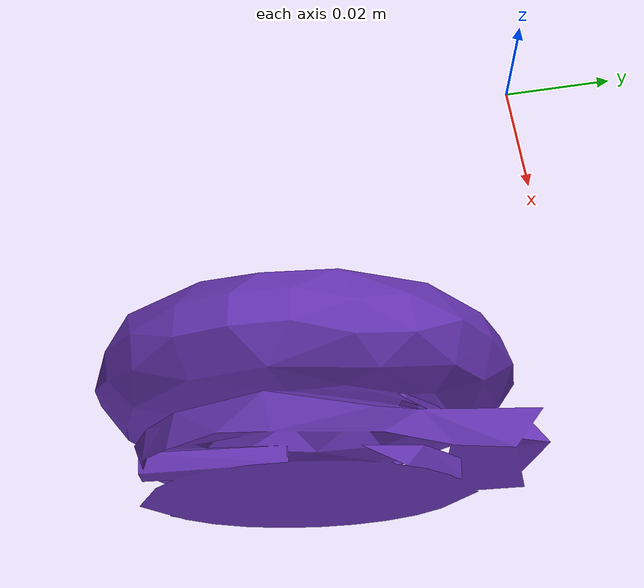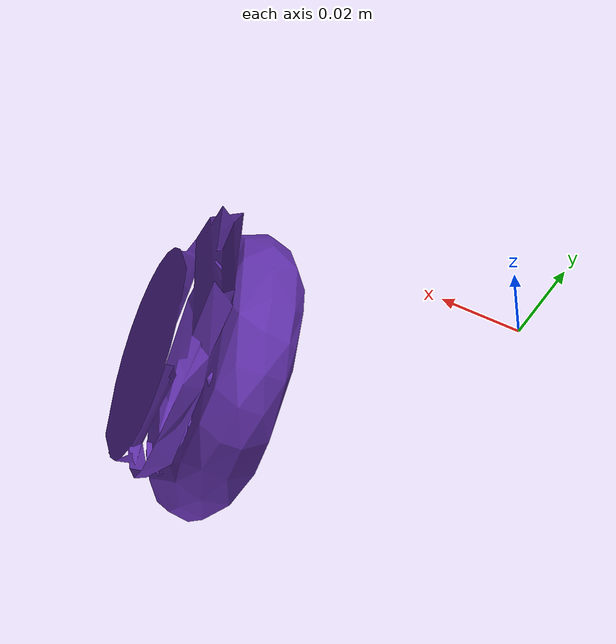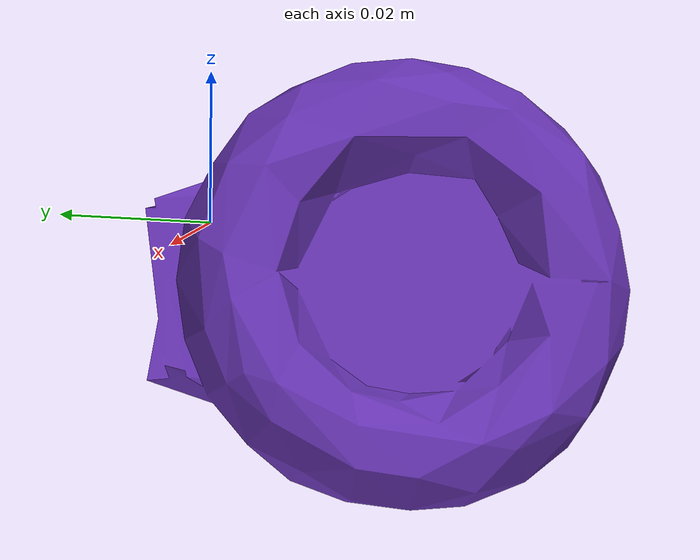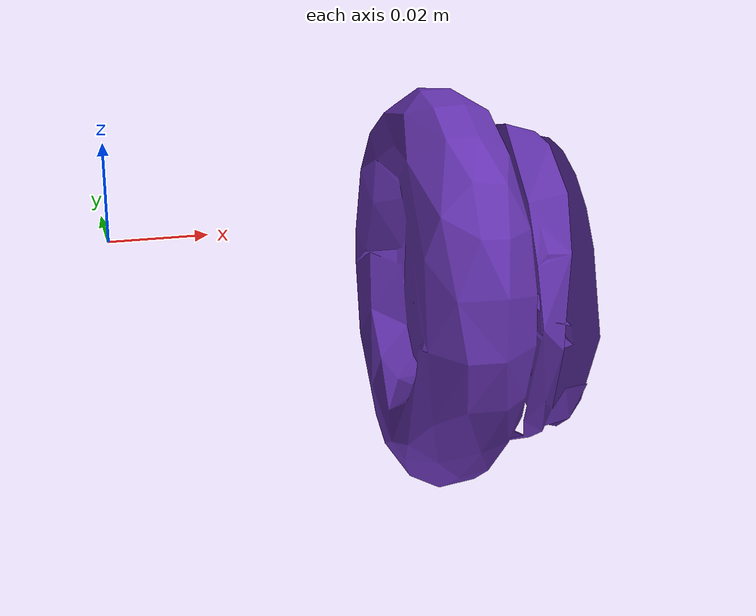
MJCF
<mujoco model="top_watertight_tiny">
  <default>
    <default group="2" type="mesh" contype="0" conaffinity="0">
      <geom group="2" type="mesh" contype="0" conaffinity="0"/>
    </default>
    <default group="3" type="mesh">
      <geom group="3" type="mesh"/>
    </default>
  </default>
  <asset>
    <mesh file="top_watertight_tiny.obj"/>
    <mesh file="top_watertight_tiny_collision_0.obj"/>
    <mesh file="top_watertight_tiny_collision_1.obj"/>
    <mesh file="top_watertight_tiny_collision_2.obj"/>
    <mesh file="top_watertight_tiny_collision_3.obj"/>
    <mesh file="top_watertight_tiny_collision_4.obj"/>
    <mesh file="top_watertight_tiny_collision_5.obj"/>
    <mesh file="top_watertight_tiny_collision_6.obj"/>
    <mesh file="top_watertight_tiny_collision_7.obj"/>
    <mesh file="top_watertight_tiny_collision_8.obj"/>
    <mesh file="top_watertight_tiny_collision_9.obj"/>
    <mesh file="top_watertight_tiny_collision_10.obj"/>
    <mesh file="top_watertight_tiny_collision_11.obj"/>
    <mesh file="top_watertight_tiny_collision_12.obj"/>
    <mesh file="top_watertight_tiny_collision_13.obj"/>
    <mesh file="top_watertight_tiny_collision_14.obj"/>
    <mesh file="top_watertight_tiny_collision_15.obj"/>
    <mesh file="top_watertight_tiny_collision_16.obj"/>
    <mesh file="top_watertight_tiny_collision_17.obj"/>
    <mesh file="top_watertight_tiny_collision_18.obj"/>
    <mesh file="top_watertight_tiny_collision_19.obj"/>
    <mesh file="top_watertight_tiny_collision_20.obj"/>
    <mesh file="top_watertight_tiny_collision_21.obj"/>
    <mesh file="top_watertight_tiny_collision_22.obj"/>
    <mesh file="top_watertight_tiny_collision_23.obj"/>
    <mesh file="top_watertight_tiny_collision_24.obj"/>
    <mesh file="top_watertight_tiny_collision_25.obj"/>
    <mesh file="top_watertight_tiny_collision_26.obj"/>
    <mesh file="top_watertight_tiny_collision_27.obj"/>
    <mesh file="top_watertight_tiny_collision_28.obj"/>
    <mesh file="top_watertight_tiny_collision_29.obj"/>
    <mesh file="top_watertight_tiny_collision_30.obj"/>
    <mesh file="top_watertight_tiny_collision_31.obj"/>
    <mesh file="top_watertight_tiny_collision_32.obj"/>
    <mesh file="top_watertight_tiny_collision_33.obj"/>
    <mesh file="top_watertight_tiny_collision_34.obj"/>
    <mesh file="top_watertight_tiny_collision_35.obj"/>
    <mesh file="top_watertight_tiny_collision_36.obj"/>
    <mesh file="top_watertight_tiny_collision_37.obj"/>
    <mesh file="top_watertight_tiny_collision_38.obj"/>
    <mesh file="top_watertight_tiny_collision_39.obj"/>
    <mesh file="top_watertight_tiny_collision_40.obj"/>
    <mesh file="top_watertight_tiny_collision_41.obj"/>
    <mesh file="top_watertight_tiny_collision_42.obj"/>
    <mesh file="top_watertight_tiny_collision_43.obj"/>
    <mesh file="top_watertight_tiny_collision_44.obj"/>
    <mesh file="top_watertight_tiny_collision_45.obj"/>
    <mesh file="top_watertight_tiny_collision_46.obj"/>
    <mesh file="top_watertight_tiny_collision_47.obj"/>
    <mesh file="top_watertight_tiny_collision_48.obj"/>
    <mesh file="top_watertight_tiny_collision_49.obj"/>
    <mesh file="top_watertight_tiny_collision_50.obj"/>
    <mesh file="top_watertight_tiny_collision_51.obj"/>
    <mesh file="top_watertight_tiny_collision_52.obj"/>
    <mesh file="top_watertight_tiny_collision_53.obj"/>
    <mesh file="top_watertight_tiny_collision_54.obj"/>
    <mesh file="top_watertight_tiny_collision_55.obj"/>
    <mesh file="top_watertight_tiny_collision_56.obj"/>
    <mesh file="top_watertight_tiny_collision_57.obj"/>
    <mesh file="top_watertight_tiny_collision_58.obj"/>
    <mesh file="top_watertight_tiny_collision_59.obj"/>
    <mesh file="top_watertight_tiny_collision_60.obj"/>
    <mesh file="top_watertight_tiny_collision_61.obj"/>
    <mesh file="top_watertight_tiny_collision_62.obj"/>
    <mesh file="top_watertight_tiny_collision_63.obj"/>
    <mesh file="top_watertight_tiny_collision_64.obj"/>
    <mesh file="top_watertight_tiny_collision_65.obj"/>
    <mesh file="top_watertight_tiny_collision_66.obj"/>
    <mesh file="top_watertight_tiny_collision_67.obj"/>
    <mesh file="top_watertight_tiny_collision_68.obj"/>
    <mesh file="top_watertight_tiny_collision_69.obj"/>
    <mesh file="top_watertight_tiny_collision_70.obj"/>
    <mesh file="top_watertight_tiny_collision_71.obj"/>
    <mesh file="top_watertight_tiny_collision_72.obj"/>
    <mesh file="top_watertight_tiny_collision_73.obj"/>
    <mesh file="top_watertight_tiny_collision_74.obj"/>
    <mesh file="top_watertight_tiny_collision_75.obj"/>
    <mesh file="top_watertight_tiny_collision_76.obj"/>
    <mesh file="top_watertight_tiny_collision_77.obj"/>
    <mesh file="top_watertight_tiny_collision_78.obj"/>
    <mesh file="top_watertight_tiny_collision_79.obj"/>
    <mesh file="top_watertight_tiny_collision_80.obj"/>
    <mesh file="top_watertight_tiny_collision_81.obj"/>
    <mesh file="top_watertight_tiny_collision_82.obj"/>
    <mesh file="top_watertight_tiny_collision_83.obj"/>
    <mesh file="top_watertight_tiny_collision_84.obj"/>
    <mesh file="top_watertight_tiny_collision_85.obj"/>
    <mesh file="top_watertight_tiny_collision_86.obj"/>
    <mesh file="top_watertight_tiny_collision_87.obj"/>
    <mesh file="top_watertight_tiny_collision_88.obj"/>
    <mesh file="top_watertight_tiny_collision_89.obj"/>
    <mesh file="top_watertight_tiny_collision_90.obj"/>
    <mesh file="top_watertight_tiny_collision_91.obj"/>
    <mesh file="top_watertight_tiny_collision_92.obj"/>
    <mesh file="top_watertight_tiny_collision_93.obj"/>
    <mesh file="top_watertight_tiny_collision_94.obj"/>
    <mesh file="top_watertight_tiny_collision_95.obj"/>
    <mesh file="top_watertight_tiny_collision_96.obj"/>
    <mesh file="top_watertight_tiny_collision_97.obj"/>
    <mesh file="top_watertight_tiny_collision_98.obj"/>
    <mesh file="top_watertight_tiny_collision_99.obj"/>
    <mesh file="top_watertight_tiny_collision_100.obj"/>
    <mesh file="top_watertight_tiny_collision_101.obj"/>
    <mesh file="top_watertight_tiny_collision_102.obj"/>
    <mesh file="top_watertight_tiny_collision_103.obj"/>
    <mesh file="top_watertight_tiny_collision_104.obj"/>
    <mesh file="top_watertight_tiny_collision_105.obj"/>
    <mesh file="top_watertight_tiny_collision_106.obj"/>
    <mesh file="top_watertight_tiny_collision_107.obj"/>
    <mesh file="top_watertight_tiny_collision_108.obj"/>
    <mesh file="top_watertight_tiny_collision_109.obj"/>
    <mesh file="top_watertight_tiny_collision_110.obj"/>
    <mesh file="top_watertight_tiny_collision_111.obj"/>
    <mesh file="top_watertight_tiny_collision_112.obj"/>
    <mesh file="top_watertight_tiny_collision_113.obj"/>
    <mesh file="top_watertight_tiny_collision_114.obj"/>
    <mesh file="top_watertight_tiny_collision_115.obj"/>
    <mesh file="top_watertight_tiny_collision_116.obj"/>
    <mesh file="top_watertight_tiny_collision_117.obj"/>
    <mesh file="top_watertight_tiny_collision_118.obj"/>
    <mesh file="top_watertight_tiny_collision_119.obj"/>
    <mesh file="top_watertight_tiny_collision_120.obj"/>
    <mesh file="top_watertight_tiny_collision_121.obj"/>
    <mesh file="top_watertight_tiny_collision_122.obj"/>
    <mesh file="top_watertight_tiny_collision_123.obj"/>
    <mesh file="top_watertight_tiny_collision_124.obj"/>
    <mesh file="top_watertight_tiny_collision_125.obj"/>
    <mesh file="top_watertight_tiny_collision_126.obj"/>
    <mesh file="top_watertight_tiny_collision_127.obj"/>
    <mesh file="top_watertight_tiny_collision_128.obj"/>
    <mesh file="top_watertight_tiny_collision_129.obj"/>
    <mesh file="top_watertight_tiny_collision_130.obj"/>
    <mesh file="top_watertight_tiny_collision_131.obj"/>
    <mesh file="top_watertight_tiny_collision_132.obj"/>
    <mesh file="top_watertight_tiny_collision_133.obj"/>
    <mesh file="top_watertight_tiny_collision_134.obj"/>
    <mesh file="top_watertight_tiny_collision_135.obj"/>
    <mesh file="top_watertight_tiny_collision_136.obj"/>
    <mesh file="top_watertight_tiny_collision_137.obj"/>
    <mesh file="top_watertight_tiny_collision_138.obj"/>
    <mesh file="top_watertight_tiny_collision_139.obj"/>
    <mesh file="top_watertight_tiny_collision_140.obj"/>
    <mesh file="top_watertight_tiny_collision_141.obj"/>
    <mesh file="top_watertight_tiny_collision_142.obj"/>
    <mesh file="top_watertight_tiny_collision_143.obj"/>
    <mesh file="top_watertight_tiny_collision_144.obj"/>
    <mesh file="top_watertight_tiny_collision_145.obj"/>
    <mesh file="top_watertight_tiny_collision_146.obj"/>
    <mesh file="top_watertight_tiny_collision_147.obj"/>
    <mesh file="top_watertight_tiny_collision_148.obj"/>
    <mesh file="top_watertight_tiny_collision_149.obj"/>
    <mesh file="top_watertight_tiny_collision_150.obj"/>
    <mesh file="top_watertight_tiny_collision_151.obj"/>
    <mesh file="top_watertight_tiny_collision_152.obj"/>
    <mesh file="top_watertight_tiny_collision_153.obj"/>
    <mesh file="top_watertight_tiny_collision_154.obj"/>
    <mesh file="top_watertight_tiny_collision_155.obj"/>
    <mesh file="top_watertight_tiny_collision_156.obj"/>
    <mesh file="top_watertight_tiny_collision_157.obj"/>
    <mesh file="top_watertight_tiny_collision_158.obj"/>
    <mesh file="top_watertight_tiny_collision_159.obj"/>
    <mesh file="top_watertight_tiny_collision_160.obj"/>
    <mesh file="top_watertight_tiny_collision_161.obj"/>
    <mesh file="top_watertight_tiny_collision_162.obj"/>
    <mesh file="top_watertight_tiny_collision_163.obj"/>
    <mesh file="top_watertight_tiny_collision_164.obj"/>
    <mesh file="top_watertight_tiny_collision_165.obj"/>
    <mesh file="top_watertight_tiny_collision_166.obj"/>
    <mesh file="top_watertight_tiny_collision_167.obj"/>
    <mesh file="top_watertight_tiny_collision_168.obj"/>
    <mesh file="top_watertight_tiny_collision_169.obj"/>
    <mesh file="top_watertight_tiny_collision_170.obj"/>
    <mesh file="top_watertight_tiny_collision_171.obj"/>
    <mesh file="top_watertight_tiny_collision_172.obj"/>
    <mesh file="top_watertight_tiny_collision_173.obj"/>
    <mesh file="top_watertight_tiny_collision_174.obj"/>
    <mesh file="top_watertight_tiny_collision_175.obj"/>
    <mesh file="top_watertight_tiny_collision_176.obj"/>
    <mesh file="top_watertight_tiny_collision_177.obj"/>
    <mesh file="top_watertight_tiny_collision_178.obj"/>
    <mesh file="top_watertight_tiny_collision_179.obj"/>
    <mesh file="top_watertight_tiny_collision_180.obj"/>
    <mesh file="top_watertight_tiny_collision_181.obj"/>
    <mesh file="top_watertight_tiny_collision_182.obj"/>
    <mesh file="top_watertight_tiny_collision_183.obj"/>
    <mesh file="top_watertight_tiny_collision_184.obj"/>
    <mesh file="top_watertight_tiny_collision_185.obj"/>
    <mesh file="top_watertight_tiny_collision_186.obj"/>
    <mesh file="top_watertight_tiny_collision_187.obj"/>
    <mesh file="top_watertight_tiny_collision_188.obj"/>
    <mesh file="top_watertight_tiny_collision_189.obj"/>
    <mesh file="top_watertight_tiny_collision_190.obj"/>
    <mesh file="top_watertight_tiny_collision_191.obj"/>
    <mesh file="top_watertight_tiny_collision_192.obj"/>
    <mesh file="top_watertight_tiny_collision_193.obj"/>
    <mesh file="top_watertight_tiny_collision_194.obj"/>
    <mesh file="top_watertight_tiny_collision_195.obj"/>
    <mesh file="top_watertight_tiny_collision_196.obj"/>
    <mesh file="top_watertight_tiny_collision_197.obj"/>
    <mesh file="top_watertight_tiny_collision_198.obj"/>
    <mesh file="top_watertight_tiny_collision_199.obj"/>
    <mesh file="top_watertight_tiny_collision_200.obj"/>
    <mesh file="top_watertight_tiny_collision_201.obj"/>
    <mesh file="top_watertight_tiny_collision_202.obj"/>
    <mesh file="top_watertight_tiny_collision_203.obj"/>
    <mesh file="top_watertight_tiny_collision_204.obj"/>
    <mesh file="top_watertight_tiny_collision_205.obj"/>
    <mesh file="top_watertight_tiny_collision_206.obj"/>
    <mesh file="top_watertight_tiny_collision_207.obj"/>
    <mesh file="top_watertight_tiny_collision_208.obj"/>
    <mesh file="top_watertight_tiny_collision_209.obj"/>
    <mesh file="top_watertight_tiny_collision_210.obj"/>
    <mesh file="top_watertight_tiny_collision_211.obj"/>
    <mesh file="top_watertight_tiny_collision_212.obj"/>
    <mesh file="top_watertight_tiny_collision_213.obj"/>
    <mesh file="top_watertight_tiny_collision_214.obj"/>
    <mesh file="top_watertight_tiny_collision_215.obj"/>
    <mesh file="top_watertight_tiny_collision_216.obj"/>
    <mesh file="top_watertight_tiny_collision_217.obj"/>
    <mesh file="top_watertight_tiny_collision_218.obj"/>
    <mesh file="top_watertight_tiny_collision_219.obj"/>
    <mesh file="top_watertight_tiny_collision_220.obj"/>
    <mesh file="top_watertight_tiny_collision_221.obj"/>
    <mesh file="top_watertight_tiny_collision_222.obj"/>
    <mesh file="top_watertight_tiny_collision_223.obj"/>
    <mesh file="top_watertight_tiny_collision_224.obj"/>
    <mesh file="top_watertight_tiny_collision_225.obj"/>
    <mesh file="top_watertight_tiny_collision_226.obj"/>
    <mesh file="top_watertight_tiny_collision_227.obj"/>
    <mesh file="top_watertight_tiny_collision_228.obj"/>
    <mesh file="top_watertight_tiny_collision_229.obj"/>
    <mesh file="top_watertight_tiny_collision_230.obj"/>
    <mesh file="top_watertight_tiny_collision_231.obj"/>
    <mesh file="top_watertight_tiny_collision_232.obj"/>
    <mesh file="top_watertight_tiny_collision_233.obj"/>
    <mesh file="top_watertight_tiny_collision_234.obj"/>
  </asset>
  <worldbody>
    <body name="top_watertight_tiny">
      <freejoint/>
      <geom mesh="top_watertight_tiny" group="2" type="mesh" rgba="0.4 0.2 0.7 1" contype="0" conaffinity="0"/>
      <geom mesh="top_watertight_tiny_collision_0" rgba="0.02032121440950785 0.2819015731763759 0.9016519211113564 1" group="3" type="mesh"/>
      <geom mesh="top_watertight_tiny_collision_1" rgba="0.8230278102926986 0.7046449840486204 0.7727893151592096 1" group="3" type="mesh"/>
      <geom mesh="top_watertight_tiny_collision_2" rgba="0.6090555890306373 0.8035151757245707 0.8189419165092798 1" group="3" type="mesh"/>
      <geom mesh="top_watertight_tiny_collision_3" rgba="0.2257852922317195 0.042999684749414735 0.12765616733394314 1" group="3" type="mesh"/>
      <geom mesh="top_watertight_tiny_collision_4" rgba="0.396346302867541 0.8201685730697985 0.25938274910943715 1" group="3" type="mesh"/>
      <geom mesh="top_watertight_tiny_collision_5" rgba="0.5347160410184116 0.6322552793313818 0.9843176004041277 1" group="3" type="mesh"/>
      <geom mesh="top_watertight_tiny_collision_6" rgba="0.6081340420957695 0.3427070139344034 0.3789496199382214 1" group="3" type="mesh"/>
      <geom mesh="top_watertight_tiny_collision_7" rgba="0.2688970818691736 0.05999278333867908 0.9561790714975121 1" group="3" type="mesh"/>
      <geom mesh="top_watertight_tiny_collision_8" rgba="0.11091487744642592 0.296167500079324 0.23132764164448227 1" group="3" type="mesh"/>
      <geom mesh="top_watertight_tiny_collision_9" rgba="0.15108762175948232 0.892904864002324 0.011122512324553524 1" group="3" type="mesh"/>
      <geom mesh="top_watertight_tiny_collision_10" rgba="0.058068236452698097 0.44641147086877553 0.813944159900522 1" group="3" type="mesh"/>
      <geom mesh="top_watertight_tiny_collision_11" rgba="0.9812733369508829 0.3805391989107213 0.6276027190841237 1" group="3" type="mesh"/>
      <geom mesh="top_watertight_tiny_collision_12" rgba="0.8215830438397369 0.5305207412682763 0.49835035638326985 1" group="3" type="mesh"/>
      <geom mesh="top_watertight_tiny_collision_13" rgba="0.9951344109908509 0.27252248956638925 0.012514650516623482 1" group="3" type="mesh"/>
      <geom mesh="top_watertight_tiny_collision_14" rgba="0.4414246479810935 0.6707238423038006 0.0012819675800485042 1" group="3" type="mesh"/>
      <geom mesh="top_watertight_tiny_collision_15" rgba="0.8360697656337299 0.48145432152547873 0.5038923932180799 1" group="3" type="mesh"/>
      <geom mesh="top_watertight_tiny_collision_16" rgba="0.8226355144231446 0.6575218883056815 0.10891124900328175 1" group="3" type="mesh"/>
      <geom mesh="top_watertight_tiny_collision_17" rgba="0.6134782560257334 0.9211247472510402 0.03768451846433141 1" group="3" type="mesh"/>
      <geom mesh="top_watertight_tiny_collision_18" rgba="0.5022768537012254 0.3668056061885344 0.09612272580936443 1" group="3" type="mesh"/>
      <geom mesh="top_watertight_tiny_collision_19" rgba="0.057105064377693804 0.8543875828645099 0.8555212070339543 1" group="3" type="mesh"/>
      <geom mesh="top_watertight_tiny_collision_20" rgba="0.4467091871246025 0.8086294049786263 0.4941704355420472 1" group="3" type="mesh"/>
      <geom mesh="top_watertight_tiny_collision_21" rgba="0.6786330507191851 0.9526412625881441 0.8084969433621011 1" group="3" type="mesh"/>
      <geom mesh="top_watertight_tiny_collision_22" rgba="0.9786698481461331 0.9344423086219869 0.984885925754222 1" group="3" type="mesh"/>
      <geom mesh="top_watertight_tiny_collision_23" rgba="0.34753973121490844 0.024935276593611055 0.9492853473933943 1" group="3" type="mesh"/>
      <geom mesh="top_watertight_tiny_collision_24" rgba="0.7841020393039738 0.7793605243921675 0.5219460667030422 1" group="3" type="mesh"/>
      <geom mesh="top_watertight_tiny_collision_25" rgba="0.7785144284301606 0.2488643080817825 0.4024028271973834 1" group="3" type="mesh"/>
      <geom mesh="top_watertight_tiny_collision_26" rgba="0.3696212204578435 0.32377231409825136 0.6774499137236655 1" group="3" type="mesh"/>
      <geom mesh="top_watertight_tiny_collision_27" rgba="0.5332125541442398 0.387948005752046 0.25269049667922294 1" group="3" type="mesh"/>
      <geom mesh="top_watertight_tiny_collision_28" rgba="0.5199306877906786 0.06757842108884804 0.661817599017218 1" group="3" type="mesh"/>
      <geom mesh="top_watertight_tiny_collision_29" rgba="0.16929683089404912 0.4039344337719565 0.6826764194077808 1" group="3" type="mesh"/>
      <geom mesh="top_watertight_tiny_collision_30" rgba="0.7948940643362439 0.8180717484438225 0.571422582841731 1" group="3" type="mesh"/>
      <geom mesh="top_watertight_tiny_collision_31" rgba="0.8076828725471229 0.2704228484883211 0.3497697912493136 1" group="3" type="mesh"/>
      <geom mesh="top_watertight_tiny_collision_32" rgba="0.7484415837505112 0.5073970599524117 0.5086390326637399 1" group="3" type="mesh"/>
      <geom mesh="top_watertight_tiny_collision_33" rgba="0.9033878688356454 0.19664912693665293 0.11730375980784458 1" group="3" type="mesh"/>
      <geom mesh="top_watertight_tiny_collision_34" rgba="0.9485365558416559 0.5054289244005737 0.6308354982182108 1" group="3" type="mesh"/>
      <geom mesh="top_watertight_tiny_collision_35" rgba="0.13993295189154775 0.46449239491718686 0.950892626373819 1" group="3" type="mesh"/>
      <geom mesh="top_watertight_tiny_collision_36" rgba="0.5723915515923211 0.03447410645258098 0.17048227141710204 1" group="3" type="mesh"/>
      <geom mesh="top_watertight_tiny_collision_37" rgba="0.7078707596073266 0.9346844209514912 0.5368032646369187 1" group="3" type="mesh"/>
      <geom mesh="top_watertight_tiny_collision_38" rgba="0.48999551693821664 0.9748110260621597 0.7461607942801436 1" group="3" type="mesh"/>
      <geom mesh="top_watertight_tiny_collision_39" rgba="0.5087944448778777 0.7656964412384011 0.7729381758590802 1" group="3" type="mesh"/>
      <geom mesh="top_watertight_tiny_collision_40" rgba="0.1461735412617462 0.39675108119876945 0.2592079706651602 1" group="3" type="mesh"/>
      <geom mesh="top_watertight_tiny_collision_41" rgba="0.48249570680297604 0.6034415881951729 0.14203839752101266 1" group="3" type="mesh"/>
      <geom mesh="top_watertight_tiny_collision_42" rgba="0.02298629215738468 0.9871499188624077 0.03139323231668145 1" group="3" type="mesh"/>
      <geom mesh="top_watertight_tiny_collision_43" rgba="0.4255930345826847 0.9342825388750783 0.6137029651940058 1" group="3" type="mesh"/>
      <geom mesh="top_watertight_tiny_collision_44" rgba="0.7611603785316904 0.3895272295226533 0.4746894186464101 1" group="3" type="mesh"/>
      <geom mesh="top_watertight_tiny_collision_45" rgba="0.9537559711510522 0.5354039915894804 0.7230137179117456 1" group="3" type="mesh"/>
      <geom mesh="top_watertight_tiny_collision_46" rgba="0.5854866445381788 0.7008790272893993 0.29720564174420927 1" group="3" type="mesh"/>
      <geom mesh="top_watertight_tiny_collision_47" rgba="0.20578943567121655 0.03918155697344605 0.3694276551654546 1" group="3" type="mesh"/>
      <geom mesh="top_watertight_tiny_collision_48" rgba="0.888626996774287 0.488355612918821 0.27438013814500517 1" group="3" type="mesh"/>
      <geom mesh="top_watertight_tiny_collision_49" rgba="0.3270480616963003 0.6426021757189507 0.33093429288620735 1" group="3" type="mesh"/>
      <geom mesh="top_watertight_tiny_collision_50" rgba="0.5548319406984966 0.9735425953349803 0.916214176440459 1" group="3" type="mesh"/>
      <geom mesh="top_watertight_tiny_collision_51" rgba="0.6998890948538884 0.2828340504836021 0.45231276868003534 1" group="3" type="mesh"/>
      <geom mesh="top_watertight_tiny_collision_52" rgba="0.015488073293014937 0.4679331362229524 0.242474830115033 1" group="3" type="mesh"/>
      <geom mesh="top_watertight_tiny_collision_53" rgba="0.37808065389121515 0.6166632181038723 0.41889218551666774 1" group="3" type="mesh"/>
      <geom mesh="top_watertight_tiny_collision_54" rgba="0.3455582594050426 0.21331284949680385 0.503511133391267 1" group="3" type="mesh"/>
      <geom mesh="top_watertight_tiny_collision_55" rgba="0.9093769206840856 0.16454555671149562 0.7288189819196831 1" group="3" type="mesh"/>
      <geom mesh="top_watertight_tiny_collision_56" rgba="0.45104149498608437 0.11860795193697626 0.4527104024151958 1" group="3" type="mesh"/>
      <geom mesh="top_watertight_tiny_collision_57" rgba="0.23960124924353443 0.8855717328507031 0.5334607055501677 1" group="3" type="mesh"/>
      <geom mesh="top_watertight_tiny_collision_58" rgba="0.44781051498894364 0.8365975058598923 0.6658252425214608 1" group="3" type="mesh"/>
      <geom mesh="top_watertight_tiny_collision_59" rgba="0.3634663149585575 0.9304860264351998 0.5897189694212939 1" group="3" type="mesh"/>
      <geom mesh="top_watertight_tiny_collision_60" rgba="0.8925465797097478 0.05628250879440999 0.290765206038726 1" group="3" type="mesh"/>
      <geom mesh="top_watertight_tiny_collision_61" rgba="0.5036859736559369 0.38165380652916236 0.7631818762704722 1" group="3" type="mesh"/>
      <geom mesh="top_watertight_tiny_collision_62" rgba="0.5792067723552745 0.8065621726304498 0.2654171504620688 1" group="3" type="mesh"/>
      <geom mesh="top_watertight_tiny_collision_63" rgba="0.9354410875422305 0.7156513962944313 0.4609810892491024 1" group="3" type="mesh"/>
      <geom mesh="top_watertight_tiny_collision_64" rgba="0.45282535700973847 0.9483580276983482 0.06534939990553934 1" group="3" type="mesh"/>
      <geom mesh="top_watertight_tiny_collision_65" rgba="0.8606610266619685 0.14021529652676112 0.5773660905551814 1" group="3" type="mesh"/>
      <geom mesh="top_watertight_tiny_collision_66" rgba="0.5633175714055079 0.19820190186198372 0.8191134308833323 1" group="3" type="mesh"/>
      <geom mesh="top_watertight_tiny_collision_67" rgba="0.4889675275455466 0.6200149636683336 0.9983916030353 1" group="3" type="mesh"/>
      <geom mesh="top_watertight_tiny_collision_68" rgba="0.8590245334596731 0.01353478610098413 0.24179564896420913 1" group="3" type="mesh"/>
      <geom mesh="top_watertight_tiny_collision_69" rgba="0.0264315762728613 0.5117074082174677 0.7168804226298111 1" group="3" type="mesh"/>
      <geom mesh="top_watertight_tiny_collision_70" rgba="0.7744554582072212 0.050259242459508746 0.029029392796563358 1" group="3" type="mesh"/>
      <geom mesh="top_watertight_tiny_collision_71" rgba="0.05670671401086991 0.8374933901111028 0.012026484571494023 1" group="3" type="mesh"/>
      <geom mesh="top_watertight_tiny_collision_72" rgba="0.019242487690173116 0.4937880330275364 0.1807290932024288 1" group="3" type="mesh"/>
      <geom mesh="top_watertight_tiny_collision_73" rgba="0.09523270172909282 0.3631603236938935 0.34808216730591146 1" group="3" type="mesh"/>
      <geom mesh="top_watertight_tiny_collision_74" rgba="0.16426625232582015 0.3532685111291024 0.7645698299087743 1" group="3" type="mesh"/>
      <geom mesh="top_watertight_tiny_collision_75" rgba="0.3329403396148318 0.7285837144936397 0.3957474234054621 1" group="3" type="mesh"/>
      <geom mesh="top_watertight_tiny_collision_76" rgba="0.8096862049473991 0.6851308655617118 0.8609135138128698 1" group="3" type="mesh"/>
      <geom mesh="top_watertight_tiny_collision_77" rgba="0.046191938228632434 0.8164636001049612 0.6649097429891925 1" group="3" type="mesh"/>
      <geom mesh="top_watertight_tiny_collision_78" rgba="0.5041500058887023 0.927925696149553 0.745279435616663 1" group="3" type="mesh"/>
      <geom mesh="top_watertight_tiny_collision_79" rgba="0.6136896690502627 0.02953152738234499 0.9672319455351099 1" group="3" type="mesh"/>
      <geom mesh="top_watertight_tiny_collision_80" rgba="0.09157317247433772 0.47396268059971036 0.15441664236614383 1" group="3" type="mesh"/>
      <geom mesh="top_watertight_tiny_collision_81" rgba="0.7973390060788627 0.218190823457862 0.27448790211676855 1" group="3" type="mesh"/>
      <geom mesh="top_watertight_tiny_collision_82" rgba="0.5676670000962296 0.25122076040527996 0.24251049162713145 1" group="3" type="mesh"/>
      <geom mesh="top_watertight_tiny_collision_83" rgba="0.9475675172577629 0.10446581676893496 0.24052470456972153 1" group="3" type="mesh"/>
      <geom mesh="top_watertight_tiny_collision_84" rgba="0.3191425479191957 0.010977293726808557 0.29314754967748735 1" group="3" type="mesh"/>
      <geom mesh="top_watertight_tiny_collision_85" rgba="0.7534854539061943 0.4818482924909435 0.7637632305080146 1" group="3" type="mesh"/>
      <geom mesh="top_watertight_tiny_collision_86" rgba="0.7087551107850453 0.9781969205460376 0.9886947991491859 1" group="3" type="mesh"/>
      <geom mesh="top_watertight_tiny_collision_87" rgba="0.7916516149858914 0.18950238786663998 0.2634551722989178 1" group="3" type="mesh"/>
      <geom mesh="top_watertight_tiny_collision_88" rgba="0.9789458329734771 0.4376098945578145 0.7704690700143922 1" group="3" type="mesh"/>
      <geom mesh="top_watertight_tiny_collision_89" rgba="0.9778982576021188 0.9046335869347706 0.23771038072546735 1" group="3" type="mesh"/>
      <geom mesh="top_watertight_tiny_collision_90" rgba="0.9401049439812511 0.40128723607448724 0.4710453628931167 1" group="3" type="mesh"/>
      <geom mesh="top_watertight_tiny_collision_91" rgba="0.585921639942792 0.2819905688159795 0.04700862452469412 1" group="3" type="mesh"/>
      <geom mesh="top_watertight_tiny_collision_92" rgba="0.022520453835756515 0.14388669439987078 0.7603778537899494 1" group="3" type="mesh"/>
      <geom mesh="top_watertight_tiny_collision_93" rgba="0.8498855359466387 0.3572397565224088 0.30680248838223234 1" group="3" type="mesh"/>
      <geom mesh="top_watertight_tiny_collision_94" rgba="0.7210496515685163 0.18357759853992628 0.4635658235062007 1" group="3" type="mesh"/>
      <geom mesh="top_watertight_tiny_collision_95" rgba="0.8390270173733774 0.45747627421192505 0.3147755895422688 1" group="3" type="mesh"/>
      <geom mesh="top_watertight_tiny_collision_96" rgba="0.16835768424022535 0.05725964567188224 0.20647028626427222 1" group="3" type="mesh"/>
      <geom mesh="top_watertight_tiny_collision_97" rgba="0.3004524356122308 0.35453688226409563 0.4188269009950375 1" group="3" type="mesh"/>
      <geom mesh="top_watertight_tiny_collision_98" rgba="0.836879971226562 0.08772351928656785 0.3246869587582424 1" group="3" type="mesh"/>
      <geom mesh="top_watertight_tiny_collision_99" rgba="0.6813826061114482 0.8486537820766458 0.23498243167676602 1" group="3" type="mesh"/>
      <geom mesh="top_watertight_tiny_collision_100" rgba="0.23827247780002458 0.8094686056335981 0.16402753587420726 1" group="3" type="mesh"/>
      <geom mesh="top_watertight_tiny_collision_101" rgba="0.2661310243278654 0.35914374604608423 0.6567378706446063 1" group="3" type="mesh"/>
      <geom mesh="top_watertight_tiny_collision_102" rgba="0.8662790966328642 0.6271743580168531 0.22498683857177482 1" group="3" type="mesh"/>
      <geom mesh="top_watertight_tiny_collision_103" rgba="0.3180705561016779 0.16585261347118474 0.9173811450988701 1" group="3" type="mesh"/>
      <geom mesh="top_watertight_tiny_collision_104" rgba="0.15323582981733141 0.5947094996166662 0.539781093704582 1" group="3" type="mesh"/>
      <geom mesh="top_watertight_tiny_collision_105" rgba="0.9391392871255553 0.01919423417046806 0.9171368812572819 1" group="3" type="mesh"/>
      <geom mesh="top_watertight_tiny_collision_106" rgba="0.005470307684317888 0.7487598262577103 0.026864479005524022 1" group="3" type="mesh"/>
      <geom mesh="top_watertight_tiny_collision_107" rgba="0.40978099199738904 0.00509350203448411 0.41198770810705343 1" group="3" type="mesh"/>
      <geom mesh="top_watertight_tiny_collision_108" rgba="0.7580123591789272 0.8453369870345419 0.4358182198786743 1" group="3" type="mesh"/>
      <geom mesh="top_watertight_tiny_collision_109" rgba="0.6385865575286057 0.48231647117043 0.16881267981448767 1" group="3" type="mesh"/>
      <geom mesh="top_watertight_tiny_collision_110" rgba="0.5096231805691575 0.6354633939711716 0.8223052013930053 1" group="3" type="mesh"/>
      <geom mesh="top_watertight_tiny_collision_111" rgba="0.13266217511966305 0.1368087880503539 0.5609971196805941 1" group="3" type="mesh"/>
      <geom mesh="top_watertight_tiny_collision_112" rgba="0.6525027304768432 0.6455557780555283 0.8908829115395381 1" group="3" type="mesh"/>
      <geom mesh="top_watertight_tiny_collision_113" rgba="0.3389499561744638 0.6788262363136015 0.9464730452352432 1" group="3" type="mesh"/>
      <geom mesh="top_watertight_tiny_collision_114" rgba="0.9440536841731291 0.6872844808999901 0.20123632975177752 1" group="3" type="mesh"/>
      <geom mesh="top_watertight_tiny_collision_115" rgba="0.4121128969268665 0.6458911469119502 0.9225763867448914 1" group="3" type="mesh"/>
      <geom mesh="top_watertight_tiny_collision_116" rgba="0.11664103236028078 0.9870654833685458 0.5363114577336527 1" group="3" type="mesh"/>
      <geom mesh="top_watertight_tiny_collision_117" rgba="0.00290659660891579 0.7753341941094889 0.15268176786807497 1" group="3" type="mesh"/>
      <geom mesh="top_watertight_tiny_collision_118" rgba="0.8514387505605289 0.18835073675500247 0.7547196470700143 1" group="3" type="mesh"/>
      <geom mesh="top_watertight_tiny_collision_119" rgba="0.37797386277801703 0.8648311130025118 0.817121536544409 1" group="3" type="mesh"/>
      <geom mesh="top_watertight_tiny_collision_120" rgba="0.6956967540135502 0.31137816088490133 0.8331048611501648 1" group="3" type="mesh"/>
      <geom mesh="top_watertight_tiny_collision_121" rgba="0.029471061328764092 0.018590458419294076 0.049734661536426694 1" group="3" type="mesh"/>
      <geom mesh="top_watertight_tiny_collision_122" rgba="0.3586518247882803 0.7775362662259286 0.4630432301834494 1" group="3" type="mesh"/>
      <geom mesh="top_watertight_tiny_collision_123" rgba="0.4422896866713515 0.3964993068141833 0.463323650013409 1" group="3" type="mesh"/>
      <geom mesh="top_watertight_tiny_collision_124" rgba="0.08710483264796798 0.7857186893192339 0.6876457032071946 1" group="3" type="mesh"/>
      <geom mesh="top_watertight_tiny_collision_125" rgba="0.8101831237891904 0.934959886828316 0.23516971959012534 1" group="3" type="mesh"/>
      <geom mesh="top_watertight_tiny_collision_126" rgba="0.11017654285698386 0.6395580746267147 0.6631366018539369 1" group="3" type="mesh"/>
      <geom mesh="top_watertight_tiny_collision_127" rgba="0.49049051374236285 0.731242252023182 0.39160252119025796 1" group="3" type="mesh"/>
      <geom mesh="top_watertight_tiny_collision_128" rgba="0.6433538736783937 0.6115119033027719 0.13427658899866723 1" group="3" type="mesh"/>
      <geom mesh="top_watertight_tiny_collision_129" rgba="0.4627559754868642 0.1492585425535402 0.14096539553890286 1" group="3" type="mesh"/>
      <geom mesh="top_watertight_tiny_collision_130" rgba="0.8322560990897371 0.3102342409752523 0.6119505030054239 1" group="3" type="mesh"/>
      <geom mesh="top_watertight_tiny_collision_131" rgba="0.6536403275767917 0.4516045886998469 0.8945656511869781 1" group="3" type="mesh"/>
      <geom mesh="top_watertight_tiny_collision_132" rgba="0.018956965457249897 0.6182003297437197 0.09411279861504718 1" group="3" type="mesh"/>
      <geom mesh="top_watertight_tiny_collision_133" rgba="0.6455796603355605 0.862007271463453 0.7259855432868384 1" group="3" type="mesh"/>
      <geom mesh="top_watertight_tiny_collision_134" rgba="0.42098164400589877 0.626748998422123 0.8606606287122444 1" group="3" type="mesh"/>
      <geom mesh="top_watertight_tiny_collision_135" rgba="0.3920456739061352 0.9800868006746043 0.18547922990985244 1" group="3" type="mesh"/>
      <geom mesh="top_watertight_tiny_collision_136" rgba="0.07777316171794602 0.4108462027016111 0.7031256933082928 1" group="3" type="mesh"/>
      <geom mesh="top_watertight_tiny_collision_137" rgba="0.04324075672395722 0.9823391803685851 0.7234850436610497 1" group="3" type="mesh"/>
      <geom mesh="top_watertight_tiny_collision_138" rgba="0.31997030376037994 0.370083262090684 0.5387362072958755 1" group="3" type="mesh"/>
      <geom mesh="top_watertight_tiny_collision_139" rgba="0.6507801729531583 0.009088825318138483 0.7088221761102272 1" group="3" type="mesh"/>
      <geom mesh="top_watertight_tiny_collision_140" rgba="0.9731645795137122 0.7476180681954407 0.3442057238723799 1" group="3" type="mesh"/>
      <geom mesh="top_watertight_tiny_collision_141" rgba="0.2079890121662782 0.8812483879092459 0.023100285810653043 1" group="3" type="mesh"/>
      <geom mesh="top_watertight_tiny_collision_142" rgba="0.10929177673472112 0.9141974904384292 0.20064810024603585 1" group="3" type="mesh"/>
      <geom mesh="top_watertight_tiny_collision_143" rgba="0.7057578643931236 0.8583390749344719 0.3718092220210849 1" group="3" type="mesh"/>
      <geom mesh="top_watertight_tiny_collision_144" rgba="0.8223294379082213 0.6475716233443288 0.41499220242337975 1" group="3" type="mesh"/>
      <geom mesh="top_watertight_tiny_collision_145" rgba="0.26606334701284895 0.42623564887969323 0.6810809551618542 1" group="3" type="mesh"/>
      <geom mesh="top_watertight_tiny_collision_146" rgba="0.8228110748687132 0.1360564294373119 0.012607467250769888 1" group="3" type="mesh"/>
      <geom mesh="top_watertight_tiny_collision_147" rgba="0.4104008528807619 0.800479521367344 0.5357416555752834 1" group="3" type="mesh"/>
      <geom mesh="top_watertight_tiny_collision_148" rgba="0.6569237502078957 0.05234876420959644 0.09979860970820142 1" group="3" type="mesh"/>
      <geom mesh="top_watertight_tiny_collision_149" rgba="0.4458983510359198 0.8778682153579928 0.1816337574524225 1" group="3" type="mesh"/>
      <geom mesh="top_watertight_tiny_collision_150" rgba="0.26619401361272566 0.17121143243045633 0.8165229153844433 1" group="3" type="mesh"/>
      <geom mesh="top_watertight_tiny_collision_151" rgba="0.7607378252522615 0.8759207915249263 0.2168806802408605 1" group="3" type="mesh"/>
      <geom mesh="top_watertight_tiny_collision_152" rgba="0.14744116634149995 0.49154458995741324 0.5375524758814851 1" group="3" type="mesh"/>
      <geom mesh="top_watertight_tiny_collision_153" rgba="0.6495696039422505 0.9295705268203478 0.11508327785538486 1" group="3" type="mesh"/>
      <geom mesh="top_watertight_tiny_collision_154" rgba="0.05197119007690654 0.19033454749141 0.8842550610597295 1" group="3" type="mesh"/>
      <geom mesh="top_watertight_tiny_collision_155" rgba="0.21873676314432433 0.025211039120336842 0.5545056036444757 1" group="3" type="mesh"/>
      <geom mesh="top_watertight_tiny_collision_156" rgba="0.31735434330485623 0.35613354047590784 0.9067928550348576 1" group="3" type="mesh"/>
      <geom mesh="top_watertight_tiny_collision_157" rgba="0.9185577886526071 0.19281486543419224 0.7835601978937334 1" group="3" type="mesh"/>
      <geom mesh="top_watertight_tiny_collision_158" rgba="0.25969497244117823 0.9314328643227974 0.44384040434075744 1" group="3" type="mesh"/>
      <geom mesh="top_watertight_tiny_collision_159" rgba="0.2688285445487335 0.5371689107119932 0.39159144387577605 1" group="3" type="mesh"/>
      <geom mesh="top_watertight_tiny_collision_160" rgba="0.8305964262282196 0.806907468850749 0.768688553247641 1" group="3" type="mesh"/>
      <geom mesh="top_watertight_tiny_collision_161" rgba="0.025791038878586026 0.9433127738271159 0.7189309206053188 1" group="3" type="mesh"/>
      <geom mesh="top_watertight_tiny_collision_162" rgba="0.8099096504890163 0.9795468100890328 0.16517239150724372 1" group="3" type="mesh"/>
      <geom mesh="top_watertight_tiny_collision_163" rgba="0.09746633414526695 0.8385052876666731 0.1970892907995887 1" group="3" type="mesh"/>
      <geom mesh="top_watertight_tiny_collision_164" rgba="0.778602652461555 0.21771102881112825 0.9318016911439618 1" group="3" type="mesh"/>
      <geom mesh="top_watertight_tiny_collision_165" rgba="0.07425590819771377 0.3262696882204056 0.6457818982732676 1" group="3" type="mesh"/>
      <geom mesh="top_watertight_tiny_collision_166" rgba="0.5581214726704208 0.7566922470478036 0.08938383130334238 1" group="3" type="mesh"/>
      <geom mesh="top_watertight_tiny_collision_167" rgba="0.9922738472144945 0.6825064564852708 0.884933390341127 1" group="3" type="mesh"/>
      <geom mesh="top_watertight_tiny_collision_168" rgba="0.9407931747060708 0.06464090202365591 0.8442364230612573 1" group="3" type="mesh"/>
      <geom mesh="top_watertight_tiny_collision_169" rgba="0.5287840632885306 0.9896462463637973 0.8570604162379928 1" group="3" type="mesh"/>
      <geom mesh="top_watertight_tiny_collision_170" rgba="0.6248471587508876 0.4815419723127369 0.9288237939625779 1" group="3" type="mesh"/>
      <geom mesh="top_watertight_tiny_collision_171" rgba="0.19445113724779217 0.46415693487967336 0.006892468738560309 1" group="3" type="mesh"/>
      <geom mesh="top_watertight_tiny_collision_172" rgba="0.4813398259569516 0.10269751837284435 0.4285556693894622 1" group="3" type="mesh"/>
      <geom mesh="top_watertight_tiny_collision_173" rgba="0.19066167317546612 0.5534902890558231 0.5724562871835328 1" group="3" type="mesh"/>
      <geom mesh="top_watertight_tiny_collision_174" rgba="0.49676519296015953 0.9868383130829278 0.3641419706126048 1" group="3" type="mesh"/>
      <geom mesh="top_watertight_tiny_collision_175" rgba="0.6463105834014202 0.8817949775159784 0.5390489004863547 1" group="3" type="mesh"/>
      <geom mesh="top_watertight_tiny_collision_176" rgba="0.8514523773578525 0.013308154047127152 0.4279510044960215 1" group="3" type="mesh"/>
      <geom mesh="top_watertight_tiny_collision_177" rgba="0.7335804553791224 0.7894586193497155 0.9413372622897158 1" group="3" type="mesh"/>
      <geom mesh="top_watertight_tiny_collision_178" rgba="0.4735238084477925 0.2977687297611893 0.18209184558306846 1" group="3" type="mesh"/>
      <geom mesh="top_watertight_tiny_collision_179" rgba="0.7895482112143835 0.6554268093935443 0.698818598425787 1" group="3" type="mesh"/>
      <geom mesh="top_watertight_tiny_collision_180" rgba="0.9961543175237622 0.42901192942872857 0.6733849696076992 1" group="3" type="mesh"/>
      <geom mesh="top_watertight_tiny_collision_181" rgba="0.22042946246232098 0.3227242354298343 0.7277869843613124 1" group="3" type="mesh"/>
      <geom mesh="top_watertight_tiny_collision_182" rgba="0.4748506922710757 0.6403789792986045 0.304172702080193 1" group="3" type="mesh"/>
      <geom mesh="top_watertight_tiny_collision_183" rgba="0.7913552212138575 0.1560079115734999 0.8988548515870254 1" group="3" type="mesh"/>
      <geom mesh="top_watertight_tiny_collision_184" rgba="0.8600594423563058 0.5249582013982347 0.5619155944723705 1" group="3" type="mesh"/>
      <geom mesh="top_watertight_tiny_collision_185" rgba="0.24278211965585783 0.07877537401267454 0.1444602270932983 1" group="3" type="mesh"/>
      <geom mesh="top_watertight_tiny_collision_186" rgba="0.8055455564888876 0.07806640966858269 0.1701773098999816 1" group="3" type="mesh"/>
      <geom mesh="top_watertight_tiny_collision_187" rgba="0.8293391959223912 0.7365632839141127 0.3273529644259574 1" group="3" type="mesh"/>
      <geom mesh="top_watertight_tiny_collision_188" rgba="0.6316170076329426 0.28765066441449694 0.04893344745092265 1" group="3" type="mesh"/>
      <geom mesh="top_watertight_tiny_collision_189" rgba="0.7447299058506728 0.37473120883570343 0.5906882425633901 1" group="3" type="mesh"/>
      <geom mesh="top_watertight_tiny_collision_190" rgba="0.13288372694217188 0.4024686931753383 0.6772839115888882 1" group="3" type="mesh"/>
      <geom mesh="top_watertight_tiny_collision_191" rgba="0.28239014335769874 0.011733484079643919 0.6110176438694812 1" group="3" type="mesh"/>
      <geom mesh="top_watertight_tiny_collision_192" rgba="0.3918129015446734 0.1619566269254824 0.6340494587790272 1" group="3" type="mesh"/>
      <geom mesh="top_watertight_tiny_collision_193" rgba="0.08860853040871997 0.9216654325930227 0.0556874100361473 1" group="3" type="mesh"/>
      <geom mesh="top_watertight_tiny_collision_194" rgba="0.21473654061511271 0.2947612998138922 0.3100678793442805 1" group="3" type="mesh"/>
      <geom mesh="top_watertight_tiny_collision_195" rgba="0.6987426263912128 0.5128899422360369 0.030734398994218037 1" group="3" type="mesh"/>
      <geom mesh="top_watertight_tiny_collision_196" rgba="0.3958700231855782 0.7228936471138664 0.27207382727798446 1" group="3" type="mesh"/>
      <geom mesh="top_watertight_tiny_collision_197" rgba="0.29332636105912824 0.8483177108729564 0.10413663422388442 1" group="3" type="mesh"/>
      <geom mesh="top_watertight_tiny_collision_198" rgba="0.2967331482126314 0.1592618411194643 0.4851220652976779 1" group="3" type="mesh"/>
      <geom mesh="top_watertight_tiny_collision_199" rgba="0.3421837883865052 0.9135775464763733 0.07060093991824246 1" group="3" type="mesh"/>
      <geom mesh="top_watertight_tiny_collision_200" rgba="0.572267246377138 0.43439508331707055 0.4841999708822531 1" group="3" type="mesh"/>
      <geom mesh="top_watertight_tiny_collision_201" rgba="0.6937125036331928 0.35501159364639145 0.28468363896797255 1" group="3" type="mesh"/>
      <geom mesh="top_watertight_tiny_collision_202" rgba="0.7216697249072069 0.43411413736869364 0.9710429276342277 1" group="3" type="mesh"/>
      <geom mesh="top_watertight_tiny_collision_203" rgba="0.004753936201459141 0.28055471048651004 0.0795743512062258 1" group="3" type="mesh"/>
      <geom mesh="top_watertight_tiny_collision_204" rgba="0.1784034199793192 0.9713545346223124 0.8088232632852711 1" group="3" type="mesh"/>
      <geom mesh="top_watertight_tiny_collision_205" rgba="0.46466715551198 0.28565107841844717 0.9938468766360712 1" group="3" type="mesh"/>
      <geom mesh="top_watertight_tiny_collision_206" rgba="0.5906137554042316 0.6159091041653983 0.047940965755428055 1" group="3" type="mesh"/>
      <geom mesh="top_watertight_tiny_collision_207" rgba="0.5795994297691912 0.8084194376864686 0.9501543604752983 1" group="3" type="mesh"/>
      <geom mesh="top_watertight_tiny_collision_208" rgba="0.11783197086373776 0.7650002115093483 0.5674594184552917 1" group="3" type="mesh"/>
      <geom mesh="top_watertight_tiny_collision_209" rgba="0.4081588956461395 0.36060246023108855 0.20103815049114315 1" group="3" type="mesh"/>
      <geom mesh="top_watertight_tiny_collision_210" rgba="0.15836915699387677 0.6963506327977468 0.6319310251186927 1" group="3" type="mesh"/>
      <geom mesh="top_watertight_tiny_collision_211" rgba="0.3832109767766465 0.1375935609424188 0.8608585193526596 1" group="3" type="mesh"/>
      <geom mesh="top_watertight_tiny_collision_212" rgba="0.5267524221285114 0.8056015786329389 0.5246567520963104 1" group="3" type="mesh"/>
      <geom mesh="top_watertight_tiny_collision_213" rgba="0.029741886138667795 0.024733120181097856 0.6475920688401735 1" group="3" type="mesh"/>
      <geom mesh="top_watertight_tiny_collision_214" rgba="0.051077360930772864 0.4866266910577134 0.3487721122248195 1" group="3" type="mesh"/>
      <geom mesh="top_watertight_tiny_collision_215" rgba="0.22767799499603925 0.21691072895482466 0.35364168226886294 1" group="3" type="mesh"/>
      <geom mesh="top_watertight_tiny_collision_216" rgba="0.06732888113597923 0.37228413156012363 0.9872074105624915 1" group="3" type="mesh"/>
      <geom mesh="top_watertight_tiny_collision_217" rgba="0.2200780942755075 0.16932432670923725 0.2706671082650256 1" group="3" type="mesh"/>
      <geom mesh="top_watertight_tiny_collision_218" rgba="0.20614079767906535 0.20502583349306025 0.5241960207840094 1" group="3" type="mesh"/>
      <geom mesh="top_watertight_tiny_collision_219" rgba="0.6699489961580822 0.3414816180278464 0.22996927603605521 1" group="3" type="mesh"/>
      <geom mesh="top_watertight_tiny_collision_220" rgba="0.8389091601890865 0.41165205496601953 0.5329986641488345 1" group="3" type="mesh"/>
      <geom mesh="top_watertight_tiny_collision_221" rgba="0.9690420970056541 0.2825413278785749 0.5081348494671167 1" group="3" type="mesh"/>
      <geom mesh="top_watertight_tiny_collision_222" rgba="0.16969975691545003 0.7906343383855081 0.14216494472804453 1" group="3" type="mesh"/>
      <geom mesh="top_watertight_tiny_collision_223" rgba="0.5389139836592914 0.30826924535358047 0.5158788157115881 1" group="3" type="mesh"/>
      <geom mesh="top_watertight_tiny_collision_224" rgba="0.8544291163969681 0.11105100346739771 0.9792958626390275 1" group="3" type="mesh"/>
      <geom mesh="top_watertight_tiny_collision_225" rgba="0.05108535580015716 0.36568831865133045 0.26531723781560623 1" group="3" type="mesh"/>
      <geom mesh="top_watertight_tiny_collision_226" rgba="0.9463441248692522 0.15437376830897143 0.4074373887920122 1" group="3" type="mesh"/>
      <geom mesh="top_watertight_tiny_collision_227" rgba="0.594468733688179 0.5879560309096995 0.21957549912936525 1" group="3" type="mesh"/>
      <geom mesh="top_watertight_tiny_collision_228" rgba="0.9516699383528546 0.06278377169832983 0.0441236919610386 1" group="3" type="mesh"/>
      <geom mesh="top_watertight_tiny_collision_229" rgba="0.5232512601733964 0.6019755286442394 0.39460360278752526 1" group="3" type="mesh"/>
      <geom mesh="top_watertight_tiny_collision_230" rgba="0.3780806517014005 0.9382036741787134 0.29305963411940883 1" group="3" type="mesh"/>
      <geom mesh="top_watertight_tiny_collision_231" rgba="0.7729428946681431 0.7833575229415206 0.44021795694152377 1" group="3" type="mesh"/>
      <geom mesh="top_watertight_tiny_collision_232" rgba="0.2685183005126791 0.07218449326547427 0.6588271465959408 1" group="3" type="mesh"/>
      <geom mesh="top_watertight_tiny_collision_233" rgba="0.3979931467368285 0.9078233839722687 0.687838946829591 1" group="3" type="mesh"/>
      <geom mesh="top_watertight_tiny_collision_234" rgba="0.2303030608028237 0.4953994988826509 0.3488056865275808 1" group="3" type="mesh"/>
    </body>
  </worldbody>
</mujoco>
